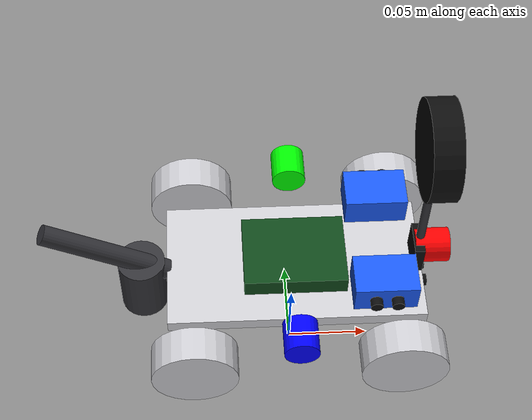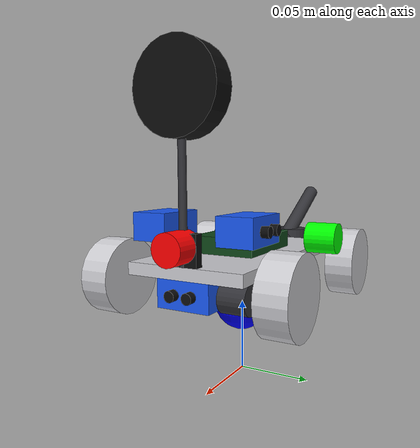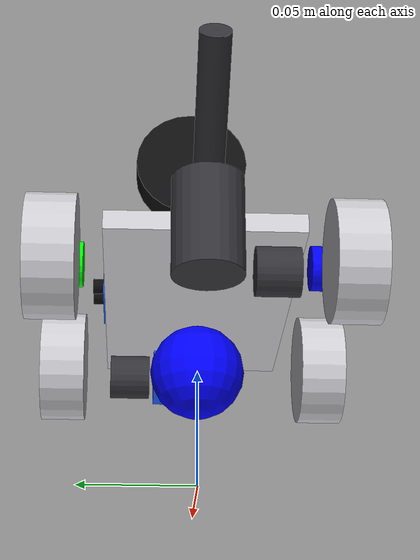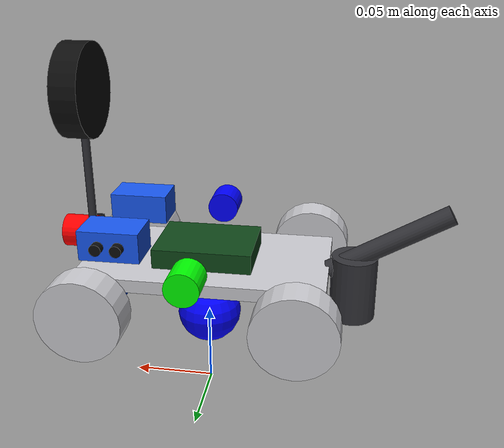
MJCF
<mujoco model="agricultural_tank_base">
    <option gravity="0 0 -9.81" timestep="0.005" integrator="implicitfast"/>

    <default>
        <geom condim="3" friction="0.4 0.005 0.0001" solref="0.01 1" solimp=".9 .95 .001"/>
        <joint damping="0.1"/>
    </default>

    <asset>
        <texture name="grass_tex" type="2d" builtin="checker" rgb1="0.22 0.50 0.15" rgb2="0.28 0.55 0.20" width="512" height="512"/>
        <material name="grass_mat" texture="grass_tex" texrepeat="12 12" texuniform="true" reflectance="0.05"/>
        <texture name="sky_tex" type="skybox" builtin="gradient" rgb1="0.40 0.65 0.95" rgb2="0.85 0.92 1.0" width="512" height="512"/>
        <material name="trunk_mat"  rgba="0.45 0.28 0.12 1" reflectance="0.05"/>
        <material name="canopy_mat" rgba="0.18 0.55 0.18 1" reflectance="0.1"/>
        <material name="crop_mat"   rgba="0.35 0.62 0.18 1" reflectance="0.05"/>
        <material name="crop_ripe_mat" rgba="0.80 0.72 0.15 1" reflectance="0.05"/>
        <material name="weed_mat" rgba="0.25 0.65 0.18 1" reflectance="0.08"/>
        <material name="fence_mat" rgba="0.60 0.42 0.22 1" reflectance="0.05"/>
        <material name="rock_mat" rgba="0.5 0.5 0.5 1"/>
        <hfield name="terrain" nrow="60" ncol="60" size="20 20 0.3 0.1"/>
    </asset>

    <worldbody>
        <light name="sun" directional="true" diffuse="1.0 0.95 0.8" specular="0.3 0.3 0.3" pos="5 -3 8" dir="-0.3 0.2 -1" castshadow="true"/>
        <light name="fill" directional="true" diffuse="0.3 0.35 0.45" specular="0.05 0.05 0.05" pos="-4 4 6" dir="0.3 -0.3 -1" castshadow="false"/>

        <!-- The Tank Car Body -->
        <body name="rover" pos="0 0 0.05">
            <joint type="free" damping="0"/>

            <site name="marker" pos="0 0 0" size="0.02" rgba="0 0 1 1"/>
            <camera name="rgb_cam" pos="0.15 0 0.2" xyaxes="0 -1 0 0 0 1" fovy="60"/>

            <site name="ray_front" pos="0.08 0 0.05" zaxis="1 0 0" type="cylinder" size="0.01 0.01" rgba="1 0 0 1"/>
            <site name="ray_left" pos="0 0.06 0.05" zaxis="0 1 0" type="cylinder" size="0.01 0.01" rgba="0 1 0 1"/>
            <site name="ray_right" pos="0 -0.06 0.05" zaxis="0 -1 0" type="cylinder" size="0.01 0.01" rgba="0 0 1 1"/>

            <!-- Geometries -->
            <geom size="0.075 0.04 0.004" pos="0 0 0.034" type="box" rgba="0.8 0.8 0.82 1" />
            <geom size="0.01 0.009" pos="0.06 0.029 0.02" quat="0.707107 0.707107 0 0" type="cylinder" rgba="0.2 0.2 0.22 1" />
            <geom size="0.01 0.009" pos="-0.06 -0.029 0.02" quat="0.707107 0.707107 0 0" type="cylinder" rgba="0.2 0.2 0.22 1" />
            <geom size="0.018 0.012 0.009" pos="0.063 0 0.021" quat="0.707107 0 0 0.707107" type="box" rgba="0.1 0.35 0.95 1" />
            <geom size="0.0035 0.0025" pos="0.0775 0.006 0.021" quat="0.5 0.5 0.5 0.5" type="cylinder" rgba="0.05 0.05 0.05 1" />
            <geom size="0.0035 0.0025" pos="0.0775 -0.006 0.021" quat="0.5 0.5 0.5 0.5" type="cylinder" rgba="0.05 0.05 0.05 1" />
            <geom size="0.018 0.012 0.009" pos="0.049 0.03 0.059" quat="0 0 0 1" type="box" rgba="0.1 0.35 0.95 1" />
            <geom size="0.0035 0.0025" pos="0.043 0.0445 0.059" quat="0 0 0.707107 0.707107" type="cylinder" rgba="0.05 0.05 0.05 1" />
            <geom size="0.0035 0.0025" pos="0.055 0.0445 0.059" quat="0 0 0.707107 0.707107" type="cylinder" rgba="0.05 0.05 0.05 1" />
            <geom size="0.018 0.012 0.009" pos="0.049 -0.03 0.059" quat="0 0 0 1" type="box" rgba="0.1 0.35 0.95 1" />
            <geom size="0.0035 0.0025" pos="0.043 -0.0445 0.059" quat="0 0 0.707107 0.707107" type="cylinder" rgba="0.05 0.05 0.05 1" />
            <geom size="0.0035 0.0025" pos="0.055 -0.0445 0.059" quat="0 0 0.707107 0.707107" type="cylinder" rgba="0.05 0.05 0.05 1" />
            <geom size="0.014 0.02" pos="-0.09 0 0.024" type="cylinder" rgba="0.2 0.2 0.22 1" />
            <geom size="0.006 0.04" pos="-0.109641 0 0.054" quat="0.5 0 0.866025 0" type="cylinder" rgba="0.2 0.2 0.22 1" />
            <geom size="0.0025 0.0505" pos="0.073 0 0.0885" type="cylinder" rgba="0.2 0.2 0.22 1" />
            <geom size="0.028 0.008" pos="0.073 0 0.139" quat="0.707107 0 0.707107 0" type="cylinder" rgba="0.05 0.05 0.05 1" />
            <geom size="0.003 0.01 0.01" pos="0.072 0 0.048" type="box" rgba="0.05 0.05 0.05 1" />
            <geom size="0.005 0.003" pos="0.078 0 0.048" quat="0.707107 0 0.707107 0" type="cylinder" rgba="0.05 0.05 0.05 1" />
            <geom size="0.03 0.0225 0.006" pos="0 0 0.044" type="box" rgba="0.06 0.28 0.1 1" />

            <body name="front_left_drive_wheel" pos="0.06 0.06 0.025">
              <inertial pos="0 0 0" quat="0.5 0.5 -0.5 0.5" mass="0.03" diaginertia="0.001 0.001 0.001" />
              <joint name="front_left_drive_joint" pos="0 0 0" axis="0 1 0" />
              <geom size="0.025 0.01" quat="0.707107 0.707107 0 0" type="cylinder" rgba="0.8 0.8 0.82 1" />
            </body>
            <body name="rear_left_idler_wheel" pos="-0.06 0.06 0.025">
              <inertial pos="0 0 0" quat="0.5 0.5 -0.5 0.5" mass="0.03" diaginertia="0.001 0.001 0.001" />
              <joint name="rear_left_idler_joint" pos="0 0 0" axis="0 1 0" />
              <geom size="0.025 0.01" quat="0.707107 0.707107 0 0" type="cylinder" rgba="0.8 0.8 0.82 1" />
            </body>
            <body name="front_right_idler_wheel" pos="0.06 -0.06 0.025">
              <inertial pos="0 0 0" quat="0.5 0.5 -0.5 0.5" mass="0.03" diaginertia="0.001 0.001 0.001" />
              <joint name="front_right_idler_joint" pos="0 0 0" axis="0 1 0" />
              <geom size="0.025 0.01" quat="0.707107 0.707107 0 0" type="cylinder" rgba="0.8 0.8 0.82 1" />
            </body>
            <body name="rear_right_drive_wheel" pos="-0.06 -0.06 0.025">
              <inertial pos="0 0 0" quat="0.5 0.5 -0.5 0.5" mass="0.03" diaginertia="0.001 0.001 0.001" />
              <joint name="rear_right_drive_joint" pos="0 0 0" axis="0 1 0" />
              <geom size="0.025 0.01" quat="0.707107 0.707107 0 0" type="cylinder" rgba="0.8 0.8 0.82 1" />
            </body>
        </body>
    </worldbody>

    <sensor>
        <rangefinder name="rf_front" site="ray_front" cutoff="5.0"/>
        <rangefinder name="rf_left" site="ray_left" cutoff="5.0"/>
        <rangefinder name="rf_right" site="ray_right" cutoff="5.0"/>
        <framepos name="rover_pos" objtype="site" objname="marker"/>
    </sensor>

    <actuator>
        <motor name="fl_motor" joint="front_left_drive_joint" gear="0.1"/>
        <motor name="rl_motor" joint="rear_left_idler_joint" gear="0.1"/>
        <motor name="fr_motor" joint="front_right_idler_joint" gear="0.1"/>
        <motor name="rr_motor" joint="rear_right_drive_joint" gear="0.1"/>
    </actuator>
</mujoco>
